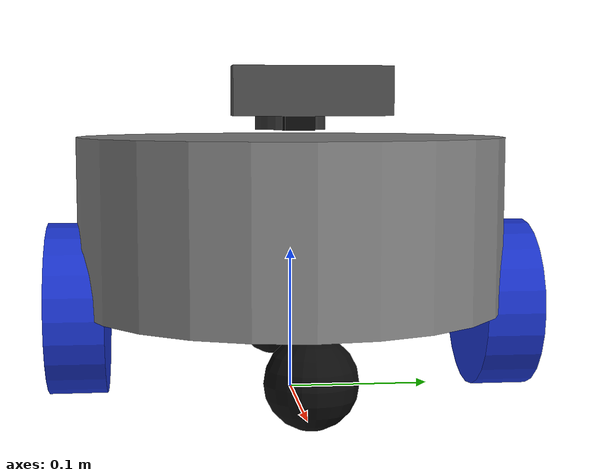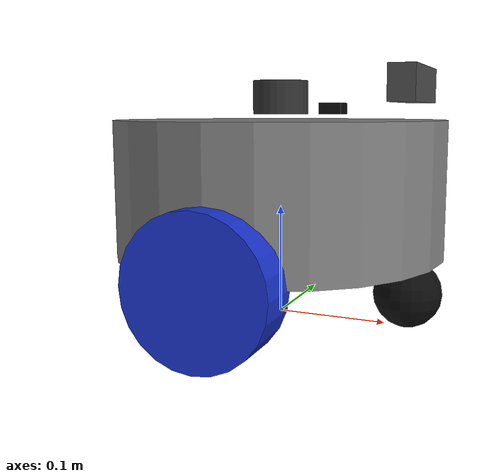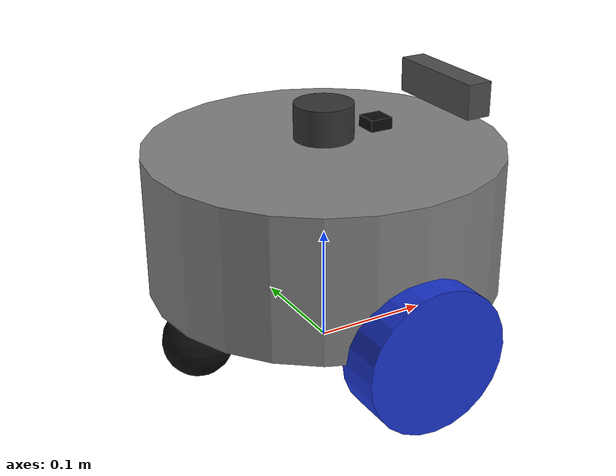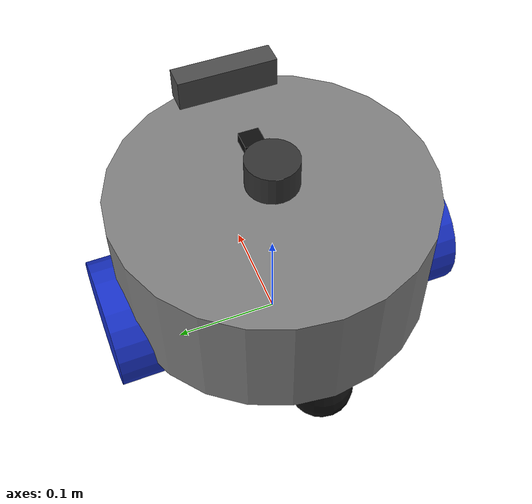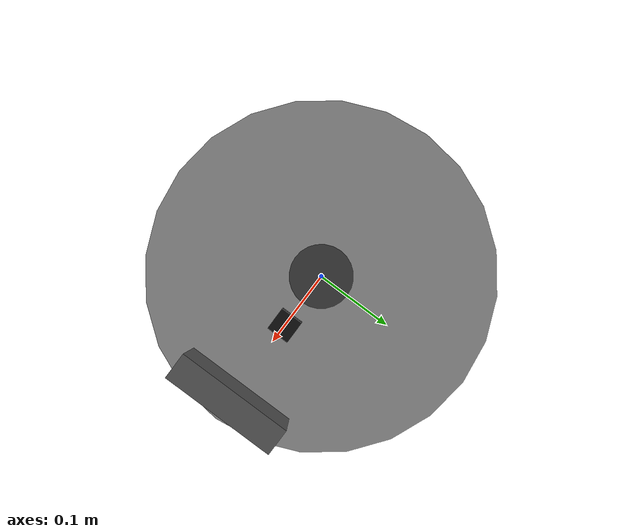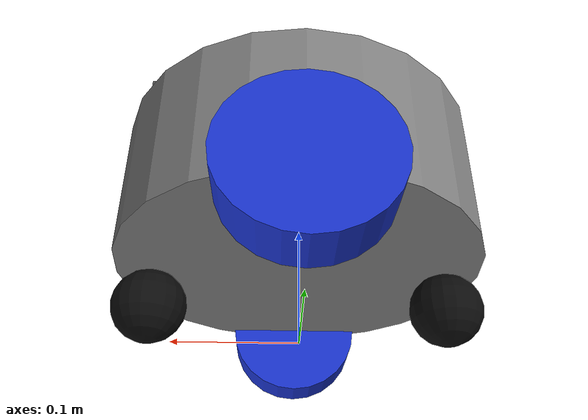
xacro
<?xml version="1.0"?>

<robot name="labbot" xmlns:xacro="http://ros.org/wiki/xacro">

  <!-- Start GZ or Ignition depending on ROS 2 Version -->
  <xacro:arg name="is_ignition" default="true"/>

  <!-- Load Simulated or Real Hardware Interfaces -->
  <xacro:arg name="is_sim" default="true"/>

  <xacro:include filename="$(find robot_lab_robots)/description_common/urdf/oakd_camera.xacro" />
  <xacro:oakd name="oakd" parent_link="base_link" model="pro" mesh_visual="false">
    <origin xyz="0.12 0 0.09" rpy="0 0 0"/>
  </xacro:oakd>

  <!-- Include Gazebo Parameters -->
  <xacro:include filename="$(find robot_lab_robots)/labbot/urdf/labbot_gazebo.xacro" />

  <!-- Include ros2_control Plugins -->
  <xacro:include filename="$(find robot_lab_robots)/labbot/urdf/labbot_ros2_control.xacro" />

  <link name="base_footprint"/>

  <!-- Chassis: 0.30 m diameter drum, 0.12 m tall, centered 0.12 m above ground -->
  <link name="base_link">
    <inertial>
      <origin xyz="0 0 0" rpy="0 0 0"/>
      <mass value="4.0"/>
      <inertia ixx="2.73e-2" ixy="0" ixz="0" iyy="2.73e-2" iyz="0" izz="4.50e-2"/>
    </inertial>
    <visual>
      <origin xyz="0 0 0" rpy="0 0 0"/>
      <geometry>
        <cylinder radius="0.15" length="0.12"/>
      </geometry>
      <material name="labbot_grey"/>
    </visual>
    <collision>
      <origin xyz="0 0 0" rpy="0 0 0"/>
      <geometry>
        <cylinder radius="0.15" length="0.12"/>
      </geometry>
    </collision>
  </link>

  <joint name="base_joint" type="fixed">
    <parent link="base_footprint"/>
    <child link="base_link"/>
    <origin xyz="0 0 0.12" rpy="0 0 0"/>
  </joint>

  <!-- Drive wheels: radius 0.06 m, width 0.04 m, separation 0.30 m -->
  <link name="wheel_left_link">
    <inertial>
      <origin xyz="0 0 0" rpy="0 0 0"/>
      <mass value="0.2"/>
      <inertia ixx="2.07e-4" ixy="0" ixz="0" iyy="3.60e-4" iyz="0" izz="2.07e-4"/>
    </inertial>
    <visual>
      <origin xyz="0 0 0" rpy="1.5708 0 0"/>
      <geometry>
        <cylinder radius="0.06" length="0.04"/>
      </geometry>
      <material name="labbot_blue"/>
    </visual>
    <collision>
      <origin xyz="0 0 0" rpy="1.5708 0 0"/>
      <geometry>
        <cylinder radius="0.06" length="0.04"/>
      </geometry>
    </collision>
  </link>

  <joint name="labbot_left_wheel_joint" type="continuous">
    <parent link="base_link"/>
    <child link="wheel_left_link"/>
    <origin xyz="0 0.15 -0.06" rpy="0 0 0"/>
    <axis xyz="0 1 0"/>
  </joint>

  <link name="wheel_right_link">
    <inertial>
      <origin xyz="0 0 0" rpy="0 0 0"/>
      <mass value="0.2"/>
      <inertia ixx="2.07e-4" ixy="0" ixz="0" iyy="3.60e-4" iyz="0" izz="2.07e-4"/>
    </inertial>
    <visual>
      <origin xyz="0 0 0" rpy="1.5708 0 0"/>
      <geometry>
        <cylinder radius="0.06" length="0.04"/>
      </geometry>
      <material name="labbot_blue"/>
    </visual>
    <collision>
      <origin xyz="0 0 0" rpy="1.5708 0 0"/>
      <geometry>
        <cylinder radius="0.06" length="0.04"/>
      </geometry>
    </collision>
  </link>

  <joint name="labbot_right_wheel_joint" type="continuous">
    <parent link="base_link"/>
    <child link="wheel_right_link"/>
    <origin xyz="0 -0.15 -0.06" rpy="0 0 0"/>
    <axis xyz="0 1 0"/>
  </joint>

  <!-- Rear passive caster: sphere radius 0.03 m -->
  <link name="caster_rear_link">
    <inertial>
      <origin xyz="0 0 0" rpy="0 0 0"/>
      <mass value="0.05"/>
      <inertia ixx="1.8e-5" ixy="0" ixz="0" iyy="1.8e-5" iyz="0" izz="1.8e-5"/>
    </inertial>
    <visual>
      <origin xyz="0 0 0" rpy="0 0 0"/>
      <geometry>
        <sphere radius="0.03"/>
      </geometry>
      <material name="labbot_black"/>
    </visual>
    <collision>
      <origin xyz="0 0 0" rpy="0 0 0"/>
      <geometry>
        <sphere radius="0.03"/>
      </geometry>
    </collision>
  </link>

  <joint name="caster_rear_joint" type="fixed">
    <parent link="base_link"/>
    <child link="caster_rear_link"/>
    <origin xyz="-0.12 0 -0.09" rpy="0 0 0"/>
  </joint>

  <!-- Front passive caster: sphere radius 0.03 m -->
  <link name="caster_front_link">
    <inertial>
      <origin xyz="0 0 0" rpy="0 0 0"/>
      <mass value="0.05"/>
      <inertia ixx="1.8e-5" ixy="0" ixz="0" iyy="1.8e-5" iyz="0" izz="1.8e-5"/>
    </inertial>
    <visual>
      <origin xyz="0 0 0" rpy="0 0 0"/>
      <geometry>
        <sphere radius="0.03"/>
      </geometry>
      <material name="labbot_black"/>
    </visual>
    <collision>
      <origin xyz="0 0 0" rpy="0 0 0"/>
      <geometry>
        <sphere radius="0.03"/>
      </geometry>
    </collision>
  </link>

  <joint name="caster_front_joint" type="fixed">
    <parent link="base_link"/>
    <child link="caster_front_link"/>
    <origin xyz="0.12 0 -0.09" rpy="0 0 0"/>
  </joint>

  <!-- IMU -->
  <link name="imu_link">
    <inertial>
      <origin xyz="0 0 0" rpy="0 0 0"/>
      <mass value="0.01"/>
      <inertia ixx="1e-6" ixy="0" ixz="0" iyy="1e-6" iyz="0" izz="1e-6"/>
    </inertial>
    <visual>
      <origin xyz="0 0 0" rpy="0 0 0"/>
      <geometry>
        <box size="0.02 0.02 0.01"/>
      </geometry>
      <material name="labbot_black"/>
    </visual>
    <collision>
      <origin xyz="0 0 0" rpy="0 0 0"/>
      <geometry>
        <box size="0.02 0.02 0.01"/>
      </geometry>
    </collision>
  </link>

  <joint name="imu_joint" type="fixed">
    <parent link="base_link"/>
    <child link="imu_link"/>
    <origin xyz="0.05 0 0.07" rpy="0 0 0"/>
  </joint>

  <!-- 2D LIDAR on top of the chassis -->
  <link name="laser_link">
    <inertial>
      <origin xyz="0 0 0" rpy="0 0 0"/>
      <mass value="0.05"/>
      <inertia ixx="1.16e-5" ixy="0" ixz="0" iyy="1.16e-5" iyz="0" izz="1.56e-5"/>
    </inertial>
    <visual>
      <origin xyz="0 0 0" rpy="0 0 0"/>
      <geometry>
        <cylinder radius="0.025" length="0.03"/>
      </geometry>
      <material name="labbot_dark"/>
    </visual>
    <collision>
      <origin xyz="0 0 0" rpy="0 0 0"/>
      <geometry>
        <cylinder radius="0.025" length="0.03"/>
      </geometry>
    </collision>
  </link>

  <joint name="laser_joint" type="fixed">
    <parent link="base_link"/>
    <child link="laser_link"/>
    <origin xyz="0 0 0.08" rpy="0 0 0"/>
  </joint>

  <!-- Used by the shared OAK-D macro, which expects the including robot
       to define it (Bumperbot does). -->
  <material name="dark_grey">
    <color rgba="0.3 0.3 0.3 1"/>
  </material>
  <material name="labbot_grey">
    <color rgba="0.5 0.5 0.5 1"/>
  </material>
  <material name="labbot_blue">
    <color rgba="0.1 0.2 0.8 1"/>
  </material>
  <material name="labbot_black">
    <color rgba="0.05 0.05 0.05 1"/>
  </material>
  <material name="labbot_dark">
    <color rgba="0.2 0.2 0.2 1"/>
  </material>

</robot>

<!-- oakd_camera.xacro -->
<robot xmlns:xacro="http://ros.org/wiki/xacro">

  <xacro:macro name="dummy_inertial">
    <inertial>
      <mass value="0.0001"/>
      <inertia ixx="0.000001" ixy="0.0" ixz="0.0"
               iyy="0.000001" iyz="0.0" izz="0.000001"/>
    </inertial>
  </xacro:macro>

  <!-- Reusable OAK-D Pro / RGBD camera macro -->
  <xacro:macro name="oakd" params="name:=oakd parent_link *origin model:=pro mesh_visual:=true rate:=30">
    <xacro:property name="baseline" value="0.075"/>
    <xacro:property name="oakd_pi" value="3.1415926535897931"/>
    <xacro:property name="base_frame" value="${name}_link"/>

    <joint name="${name}_joint" type="fixed">
      <parent link="${parent_link}"/>
      <child link="${base_frame}"/>
      <xacro:insert_block name="origin"/>
    </joint>

    <link name="${base_frame}">
      <visual>
        <geometry>
          <xacro:if value="${mesh_visual}">
            <mesh filename="package://robot_lab_robots/description_common/meshes/oakd_${model}.stl" scale="1 1 1"/>
          </xacro:if>
          <xacro:unless value="${mesh_visual}">
            <box size="0.0225 0.097 0.03"/>
          </xacro:unless>
        </geometry>
        <material name="dark_grey"/>
      </visual>
      <collision>
        <origin xyz="-0.011 0 -0.005" rpy="0 0 0"/>
        <geometry>
          <box size="0.0225 0.097 0.03"/>
        </geometry>
      </collision>
      <inertial>
        <mass value="0.061"/>
        <inertia ixx="0.00000202475" ixy="0.0" ixz="0.0"
                 iyy="0.00001527320" iyz="0.0" izz="0.00001605536"/>
      </inertial>
    </link>

    <link name="${name}_rgb_camera_frame">
      <xacro:dummy_inertial/>
    </link>

    <joint name="${name}_rgb_camera_joint" type="fixed">
      <parent link="${base_frame}"/>
      <child link="${name}_rgb_camera_frame"/>
      <origin xyz="0 0 0" rpy="0 0 0"/>
    </joint>

    <link name="${name}_rgb_camera_optical_frame">
      <xacro:dummy_inertial/>
    </link>

    <joint name="${name}_rgb_camera_optical_joint" type="fixed">
      <parent link="${name}_rgb_camera_frame"/>
      <child link="${name}_rgb_camera_optical_frame"/>
      <origin xyz="0 0 0" rpy="${-oakd_pi/2} 0 ${-oakd_pi/2}"/>
    </joint>

    <link name="${name}_left_camera_frame">
      <xacro:dummy_inertial/>
    </link>

    <joint name="${name}_left_camera_joint" type="fixed">
      <parent link="${base_frame}"/>
      <child link="${name}_left_camera_frame"/>
      <origin xyz="0 ${baseline/2} 0" rpy="0 0 0"/>
    </joint>

    <link name="${name}_left_camera_optical_frame">
      <xacro:dummy_inertial/>
    </link>

    <joint name="${name}_left_camera_optical_joint" type="fixed">
      <parent link="${name}_left_camera_frame"/>
      <child link="${name}_left_camera_optical_frame"/>
      <origin xyz="0 0 0" rpy="${-oakd_pi/2} 0 ${-oakd_pi/2}"/>
    </joint>

    <link name="${name}_right_camera_frame">
      <xacro:dummy_inertial/>
    </link>

    <joint name="${name}_right_camera_joint" type="fixed">
      <parent link="${base_frame}"/>
      <child link="${name}_right_camera_frame"/>
      <origin xyz="0 ${-baseline/2} 0" rpy="0 0 0"/>
    </joint>

    <link name="${name}_right_camera_optical_frame">
      <xacro:dummy_inertial/>
    </link>

    <joint name="${name}_right_camera_optical_joint" type="fixed">
      <parent link="${name}_right_camera_frame"/>
      <child link="${name}_right_camera_optical_frame"/>
      <origin xyz="0 0 0" rpy="${-oakd_pi/2} 0 ${-oakd_pi/2}"/>
    </joint>

    <link name="${name}_imu_frame">
      <xacro:dummy_inertial/>
    </link>

    <joint name="${name}_imu_joint" type="fixed">
      <parent link="${base_frame}"/>
      <child link="${name}_imu_frame"/>
      <origin xyz="0 0 0" rpy="${-oakd_pi/2} 0 ${-oakd_pi/2}"/>
    </joint>

    <gazebo reference="${name}_rgb_camera_frame">
      <sensor name="rgbd_camera" type="rgbd_camera">
        <always_on>1</always_on>
        <update_rate>${rate}</update_rate>
        <visualize>true</visualize>
        <camera>
          <horizontal_fov>1.25</horizontal_fov>
          <image>
            <width>320</width>
            <height>240</height>
          </image>
          <clip>
            <near>0.3</near>
            <far>100</far>
          </clip>
          <optical_frame_id>${name}_rgb_camera_optical_frame</optical_frame_id>
        </camera>
      </sensor>
      <material>Gazebo/DarkGrey</material>
    </gazebo>

    <gazebo reference="${name}_joint">
      <preserveFixedJoint>true</preserveFixedJoint>
    </gazebo>
    <gazebo reference="${name}_rgb_camera_joint">
      <preserveFixedJoint>true</preserveFixedJoint>
    </gazebo>
    <gazebo reference="${name}_rgb_camera_optical_joint">
      <preserveFixedJoint>true</preserveFixedJoint>
    </gazebo>
    <gazebo reference="${name}_left_camera_joint">
      <preserveFixedJoint>true</preserveFixedJoint>
    </gazebo>
    <gazebo reference="${name}_left_camera_optical_joint">
      <preserveFixedJoint>true</preserveFixedJoint>
    </gazebo>
    <gazebo reference="${name}_right_camera_joint">
      <preserveFixedJoint>true</preserveFixedJoint>
    </gazebo>
    <gazebo reference="${name}_right_camera_optical_joint">
      <preserveFixedJoint>true</preserveFixedJoint>
    </gazebo>
    <gazebo reference="${name}_imu_joint">
      <preserveFixedJoint>true</preserveFixedJoint>
    </gazebo>
  </xacro:macro>

</robot>
